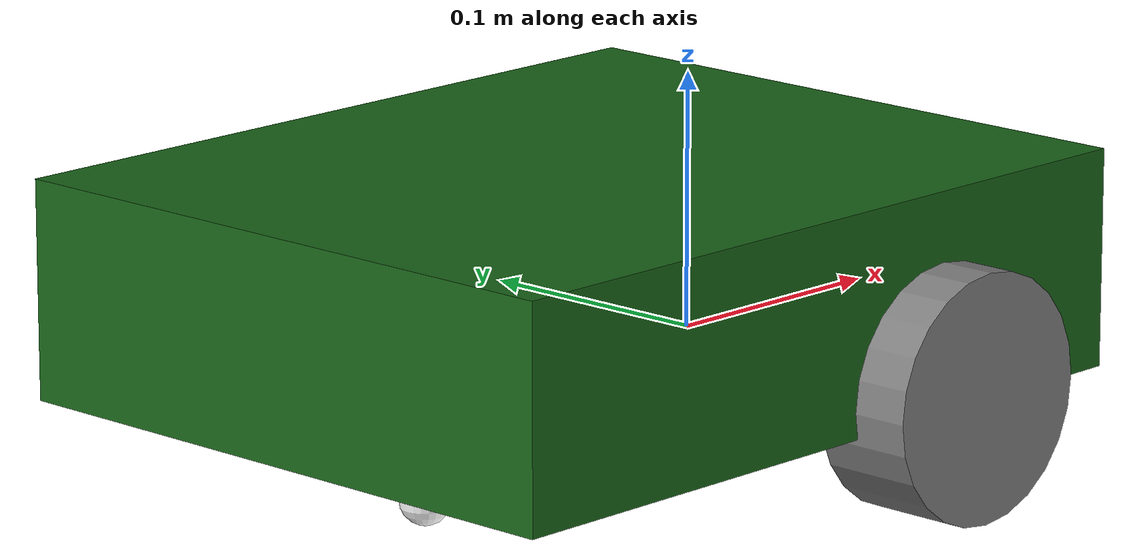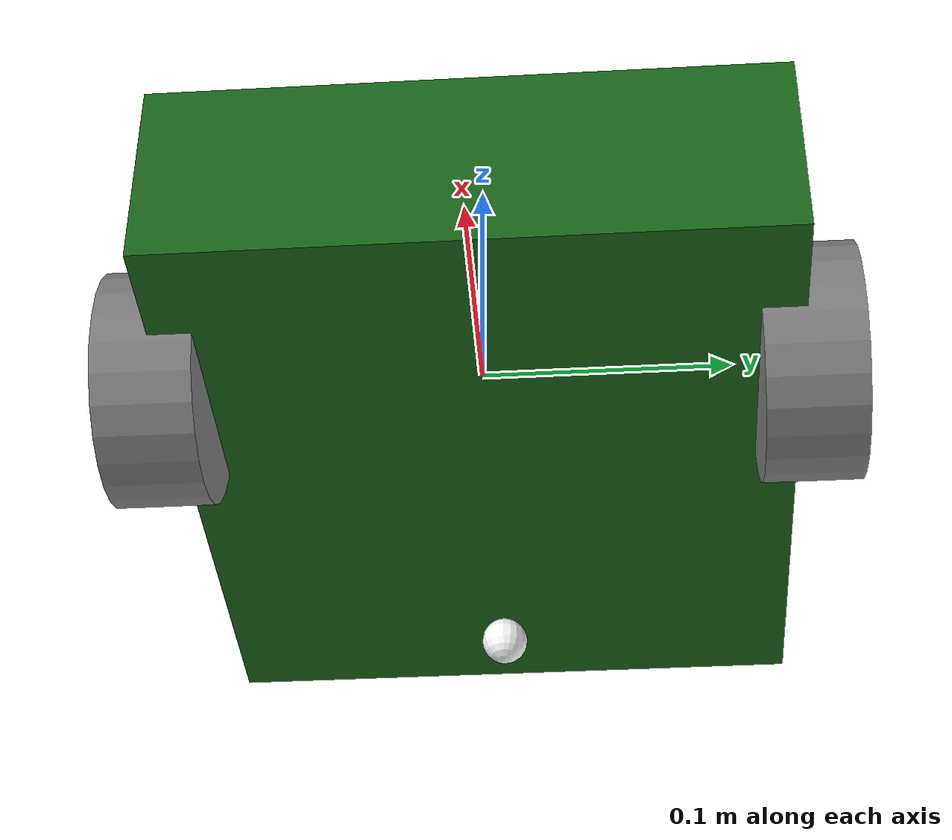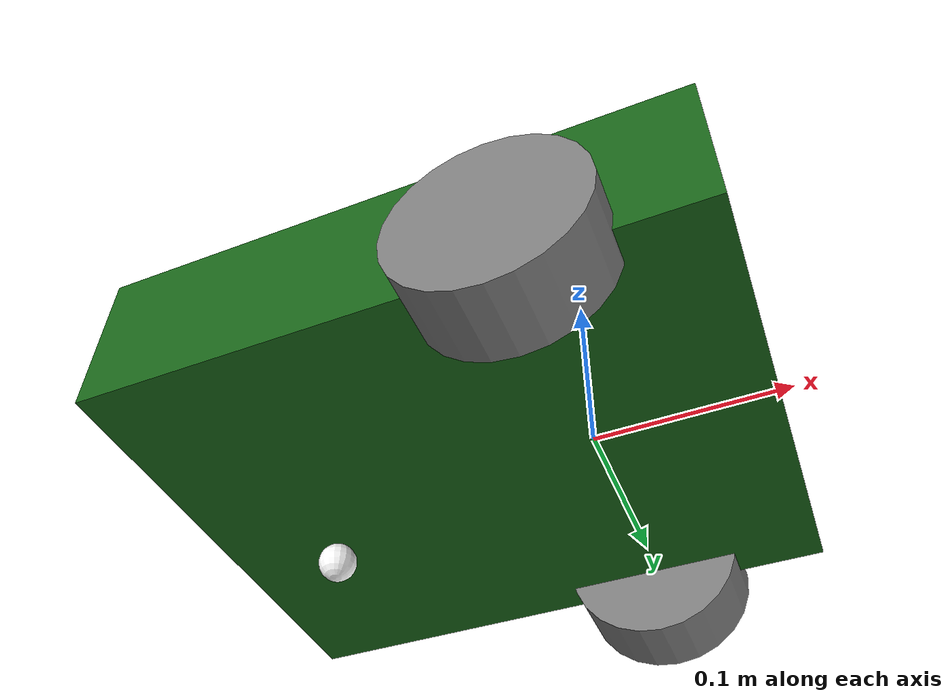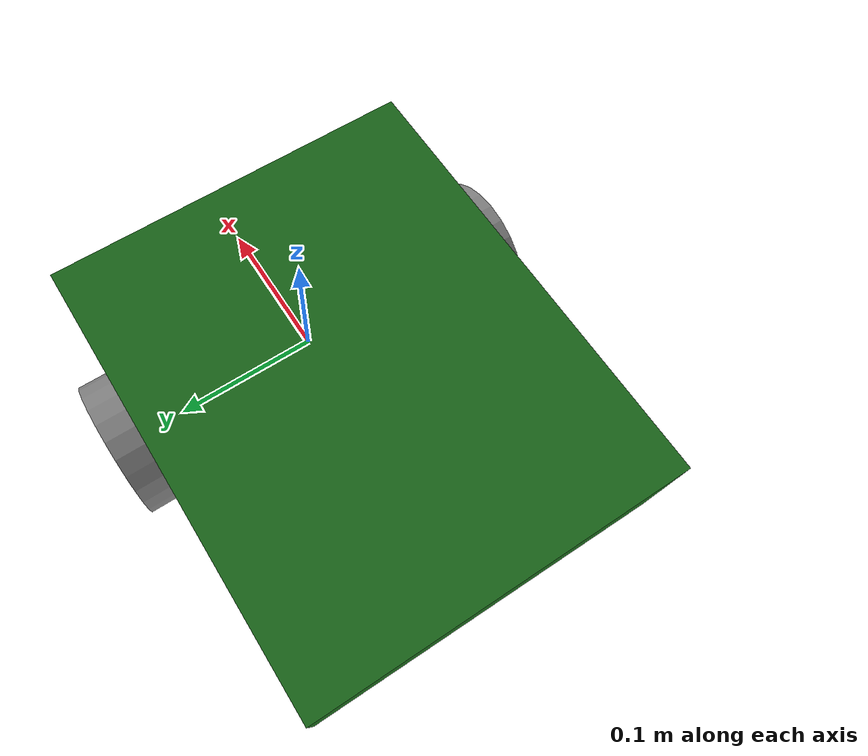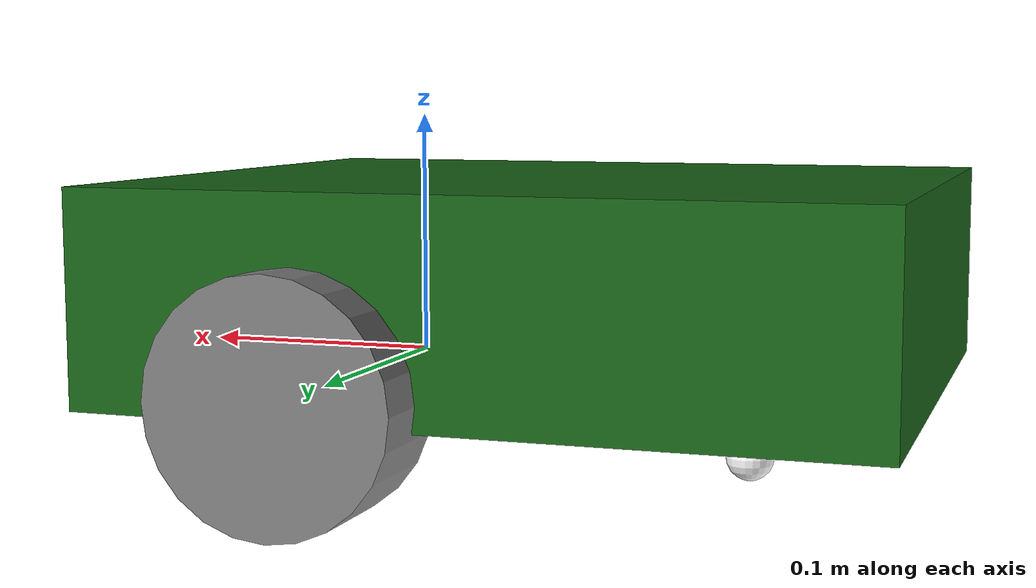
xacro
<?xml version="1.0"?>
<robot xmlns:xacro="http://www.ros.org/wiki/xacro" >

    <xacro:include filename="inertial_macros.xacro"/>

    <xacro:property name="chassis_length" value="0.31"/>
    <xacro:property name="chassis_width" value="0.255"/>
    <xacro:property name="chassis_height" value="0.085"/>
    <xacro:property name="chassis_mass" value="2.8"/>
    <xacro:property name="wheel_radius" value="0.048"/>
    <xacro:property name="wheel_thickness" value="0.04"/>
    <xacro:property name="wheel_mass" value="0.05"/>
    <xacro:property name="wheel_offset_x" value="0.217"/>
    <xacro:property name="wheel_offset_y" value="0.13"/>
    <xacro:property name="wheel_offset_z" value="0.01"/>
    <xacro:property name="caster_wheel_radius" value="0.01"/>
    <xacro:property name="caster_wheel_mass" value="0.01"/>
    <xacro:property name="caster_wheel_offset_x" value="0.075"/>
    <xacro:property name="caster_wheel_offset_z" value="${wheel_offset_z - wheel_radius + caster_wheel_radius}"/>

    <material name="white">
        <color rgba="1 1 1 1" />
    </material>

    <material name="colormain">
        <color rgba="0.1 0.4 0.1 1"/>
    </material>

    <material name="gray">
        <color rgba="0.5 0.5 0.5 1"/>
    </material>

    <material name="black">
        <color rgba="0 0 0 1"/>
    </material>

    <material name="red">
        <color rgba="1 0 0 1"/>
    </material>

    <!-- Banh xe -->

    <link name="base_link">

    </link>

    <!-- toa do goc -->

    <joint name="base_footprint_joint" type="fixed">
        <parent link="base_link"/>
        <child link="base_footprint"/>
        <origin xyz="0 0 0" rpy="0 0 0"/>
    </joint>

    <link name="base_footprint">
    </link>

    <!-- khung robot -->

    <joint name="chassis_joint" type="fixed">
        <parent link="base_link"/>
        <child link="chassis"/>
        <origin xyz="${-wheel_offset_x} 0 ${-wheel_offset_z}"/>
    </joint>

    <link name="chassis">
        <visual>
            <origin xyz="${chassis_length/2} 0 ${chassis_height/2}"/>
            <geometry>
                <box size="${chassis_length} ${chassis_width} ${chassis_height}"/>
            </geometry>
            <material name="colormain"/>
        </visual>
        <collision>
            <origin xyz="${chassis_length/2} 0 ${chassis_height/2}"/>
            <geometry>
                <box size="${chassis_length} ${chassis_width} ${chassis_height}"/>
            </geometry>
        </collision>
        <xacro:inertial_box mass="0.5" x="${chassis_length}" y="${chassis_width}" z="${chassis_height}">
            <origin xyz="${chassis_length/2} 0 ${chassis_height/2}" rpy="0 0 0"/>
        </xacro:inertial_box>
    </link>

    <gazebo reference="chassis">
        <material>Gazebo/Colormain</material>
    </gazebo>

    <!-- Banh xe trai -->

    <joint name="banhxe_trai" type="continuous">
        <parent link="base_link"/>
        <child link="left_wheel"/>
        <origin xyz="0 ${wheel_offset_y} 0" rpy="-${pi/2} 0 0" />
        <axis xyz="0 0 1"/>
    </joint>

    <link name="left_wheel">
        <visual>
            <geometry>
                <cylinder radius="${wheel_radius}" length="${wheel_thickness}"/>
            </geometry>
            <material name="gray"/>
        </visual>
        <collision>
            <geometry>
                <sphere radius="${wheel_radius}"/>
            </geometry>
        </collision>
        <xacro:inertial_cylinder mass="${wheel_mass}" length="${wheel_thickness}" radius="${wheel_radius}">
            <origin xyz="0 0 0" rpy="0 0 0"/>
        </xacro:inertial_cylinder>
    </link>

    <gazebo reference="left_wheel">
        <material>Gazebo/Gray</material>
    </gazebo>

    <!-- Banh xe phai -->

    <joint name="banhxe_phai" type="continuous">
        <parent link="base_link"/>
        <child link="right_wheel"/>
        <origin xyz="0 ${-wheel_offset_y} 0" rpy="${pi/2} 0 0" />
        <axis xyz="0 0 -1"/>
    </joint>

    <link name="right_wheel">
        <visual>
            <geometry>
                <cylinder radius="${wheel_radius}" length="${wheel_thickness}"/>
            </geometry>
            <material name="gray"/>
        </visual>
        <collision>
            <geometry>
                <sphere radius="${wheel_radius}"/>
            </geometry>
        </collision>
        <xacro:inertial_cylinder mass="${wheel_mass}" length="${wheel_thickness}" radius="${wheel_radius}">
            <origin xyz="0 0 0" rpy="0 0 0"/>
        </xacro:inertial_cylinder>
    </link>

    <gazebo reference="right_wheel">
        <material>Gazebo/Gray</material>
    </gazebo>

    <!-- Banh xe truoc -->

    <joint name="caster_wheel_joint" type="fixed">
        <parent link="chassis"/>
        <child link="caster_wheel"/>
        <origin xyz="${caster_wheel_offset_x} 0 ${caster_wheel_offset_z}"/>
    </joint>

    <link name="caster_wheel">
        <visual>
            <geometry>
                <sphere radius="${caster_wheel_radius}"/>
            </geometry>
            <material name="white"/>
        </visual>
        <collision>
            <geometry>
                <sphere radius="${caster_wheel_radius}"/>
            </geometry>
        </collision>
        <xacro:inertial_sphere mass="${caster_wheel_mass}" radius="${caster_wheel_radius}">
            <origin xyz="0 0 0" rpy="0 0 0"/>
        </xacro:inertial_sphere>
    </link>

    <gazebo reference="caster_wheel">
        <material>Gazebo/White</material>
        <mu1 value="0.001"/>
        <mu2 value="0.001"/>
    </gazebo>

</robot>
